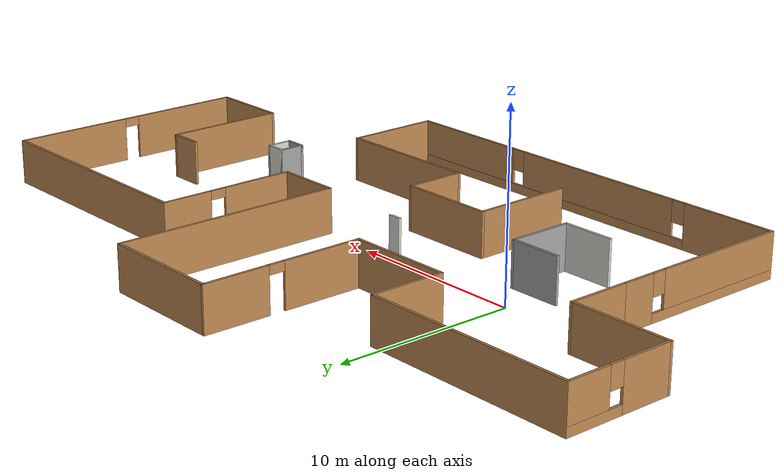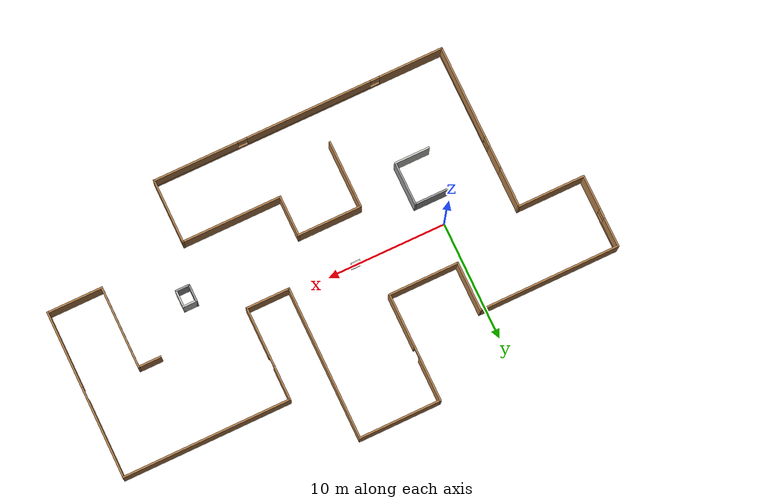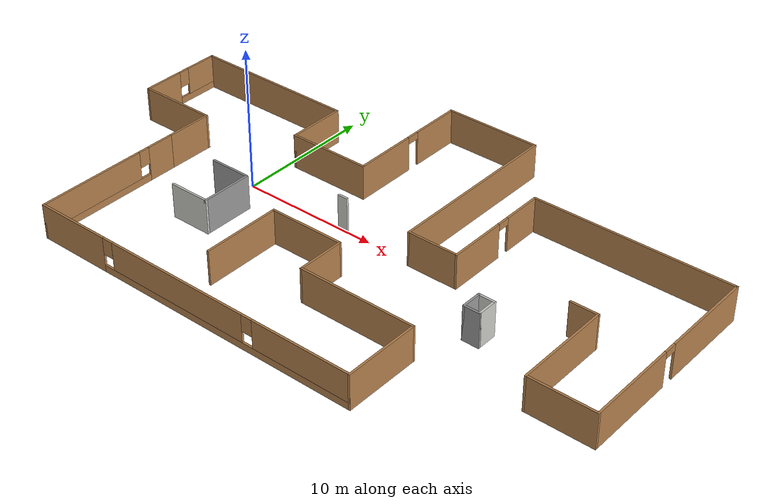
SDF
<?xml version='1.0'?>
<sdf version='1.7'>
  <model name='my_building'>
    <pose>9.89348 0.109525 0 0 -0 0</pose>
    <link name='Wall_0'>
      <pose>-15.525 -7.225 0 0 -0 -1.5708</pose>
      <visual name='Wall_0_Visual_0'>
        <pose>-4.36645 0 1.25 0 -0 0</pose>
        <geometry>
          <box>
            <size>2.0171 0.15 2.5</size>
          </box>
        </geometry>
        <material>
          <script>
            <uri>file://media/materials/scripts/gazebo.material</uri>
            <name>Gazebo/Wood</name>
          </script>
          <ambient>1 1 1 1</ambient>
        </material>
        <meta>
          <layer>0</layer>
        </meta>
      </visual>
      <collision name='Wall_0_Collision_0'>
        <geometry>
          <box>
            <size>2.0171 0.15 2.5</size>
          </box>
        </geometry>
        <pose>-4.36645 0 1.25 0 -0 0</pose>
      </collision>
      <visual name='Wall_0_Visual_1'>
        <pose>1.00855 0 0.25 0 -0 0</pose>
        <geometry>
          <box>
            <size>8.7329 0.15 0.5</size>
          </box>
        </geometry>
        <material>
          <script>
            <uri>file://media/materials/scripts/gazebo.material</uri>
            <name>Gazebo/Wood</name>
          </script>
          <ambient>1 1 1 1</ambient>
        </material>
        <meta>
          <layer>0</layer>
        </meta>
      </visual>
      <collision name='Wall_0_Collision_1'>
        <geometry>
          <box>
            <size>8.7329 0.15 0.5</size>
          </box>
        </geometry>
        <pose>1.00855 0 0.25 0 -0 0</pose>
      </collision>
      <visual name='Wall_0_Visual_2'>
        <pose>1.40855 0 1.5 0 -0 0</pose>
        <geometry>
          <box>
            <size>7.9329 0.15 2</size>
          </box>
        </geometry>
        <material>
          <script>
            <uri>file://media/materials/scripts/gazebo.material</uri>
            <name>Gazebo/Wood</name>
          </script>
          <ambient>1 1 1 1</ambient>
        </material>
        <meta>
          <layer>0</layer>
        </meta>
      </visual>
      <collision name='Wall_0_Collision_2'>
        <geometry>
          <box>
            <size>7.9329 0.15 2</size>
          </box>
        </geometry>
        <pose>1.40855 0 1.5 0 -0 0</pose>
      </collision>
      <visual name='Wall_0_Visual_3'>
        <pose>-2.9579 0 1.9 0 -0 0</pose>
        <geometry>
          <box>
            <size>0.8 0.15 1.2</size>
          </box>
        </geometry>
        <material>
          <script>
            <uri>file://media/materials/scripts/gazebo.material</uri>
            <name>Gazebo/Wood</name>
          </script>
          <ambient>1 1 1 1</ambient>
        </material>
        <meta>
          <layer>0</layer>
        </meta>
      </visual>
      <collision name='Wall_0_Collision_3'>
        <geometry>
          <box>
            <size>0.8 0.15 1.2</size>
          </box>
        </geometry>
        <pose>-2.9579 0 1.9 0 -0 0</pose>
      </collision>
    </link>
    <link name='Wall_1'>
      <pose>-3.1 -12.525 0 0 -0 0</pose>
      <visual name='Wall_1_Visual_0'>
        <pose>-9.75801 0 1.25 0 -0 0</pose>
        <geometry>
          <box>
            <size>5.48397 0.15 2.5</size>
          </box>
        </geometry>
        <material>
          <script>
            <uri>file://media/materials/scripts/gazebo.material</uri>
            <name>Gazebo/Wood</name>
          </script>
          <ambient>1 1 1 1</ambient>
        </material>
        <meta>
          <layer>0</layer>
        </meta>
      </visual>
      <collision name='Wall_1_Collision_0'>
        <geometry>
          <box>
            <size>5.48397 0.15 2.5</size>
          </box>
        </geometry>
        <pose>-9.75801 0 1.25 0 -0 0</pose>
      </collision>
      <visual name='Wall_1_Visual_1'>
        <pose>2.74199 0 0.25 0 -0 0</pose>
        <geometry>
          <box>
            <size>19.516 0.15 0.5</size>
          </box>
        </geometry>
        <material>
          <script>
            <uri>file://media/materials/scripts/gazebo.material</uri>
            <name>Gazebo/Wood</name>
          </script>
          <ambient>1 1 1 1</ambient>
        </material>
        <meta>
          <layer>0</layer>
        </meta>
      </visual>
      <collision name='Wall_1_Collision_1'>
        <geometry>
          <box>
            <size>19.516 0.15 0.5</size>
          </box>
        </geometry>
        <pose>2.74199 0 0.25 0 -0 0</pose>
      </collision>
      <visual name='Wall_1_Visual_2'>
        <pose>-0.884706 0 1.5 0 -0 0</pose>
        <geometry>
          <box>
            <size>10.6626 0.15 2</size>
          </box>
        </geometry>
        <material>
          <script>
            <uri>file://media/materials/scripts/gazebo.material</uri>
            <name>Gazebo/Wood</name>
          </script>
          <ambient>1 1 1 1</ambient>
        </material>
        <meta>
          <layer>0</layer>
        </meta>
      </visual>
      <collision name='Wall_1_Collision_2'>
        <geometry>
          <box>
            <size>10.6626 0.15 2</size>
          </box>
        </geometry>
        <pose>-0.884706 0 1.5 0 -0 0</pose>
      </collision>
      <visual name='Wall_1_Visual_3'>
        <pose>8.87331 0 1.5 0 -0 0</pose>
        <geometry>
          <box>
            <size>7.25338 0.15 2</size>
          </box>
        </geometry>
        <material>
          <script>
            <uri>file://media/materials/scripts/gazebo.material</uri>
            <name>Gazebo/Wood</name>
          </script>
          <ambient>1 1 1 1</ambient>
        </material>
        <meta>
          <layer>0</layer>
        </meta>
      </visual>
      <collision name='Wall_1_Collision_3'>
        <geometry>
          <box>
            <size>7.25338 0.15 2</size>
          </box>
        </geometry>
        <pose>8.87331 0 1.5 0 -0 0</pose>
      </collision>
      <visual name='Wall_1_Visual_4'>
        <pose>-6.61603 0 1.9 0 -0 0</pose>
        <geometry>
          <box>
            <size>0.8 0.15 1.2</size>
          </box>
        </geometry>
        <material>
          <script>
            <uri>file://media/materials/scripts/gazebo.material</uri>
            <name>Gazebo/Wood</name>
          </script>
          <ambient>1 1 1 1</ambient>
        </material>
        <meta>
          <layer>0</layer>
        </meta>
      </visual>
      <collision name='Wall_1_Collision_4'>
        <geometry>
          <box>
            <size>0.8 0.15 1.2</size>
          </box>
        </geometry>
        <pose>-6.61603 0 1.9 0 -0 0</pose>
      </collision>
      <visual name='Wall_1_Visual_5'>
        <pose>4.84662 0 1.9 0 -0 0</pose>
        <geometry>
          <box>
            <size>0.8 0.15 1.2</size>
          </box>
        </geometry>
        <material>
          <script>
            <uri>file://media/materials/scripts/gazebo.material</uri>
            <name>Gazebo/Wood</name>
          </script>
          <ambient>1 1 1 1</ambient>
        </material>
        <meta>
          <layer>0</layer>
        </meta>
      </visual>
      <collision name='Wall_1_Collision_5'>
        <geometry>
          <box>
            <size>0.8 0.15 1.2</size>
          </box>
        </geometry>
        <pose>4.84662 0 1.9 0 -0 0</pose>
      </collision>
    </link>
    <link name='Wall_10'>
      <pose>-21.125 4.475 0 0 -0 1.5708</pose>
      <visual name='Wall_10_Visual_0'>
        <pose>-1.64048 0 1.25 0 -0 0</pose>
        <geometry>
          <box>
            <size>2.96905 0.15 2.5</size>
          </box>
        </geometry>
        <material>
          <script>
            <uri>file://media/materials/scripts/gazebo.material</uri>
            <name>Gazebo/Wood</name>
          </script>
          <ambient>1 1 1 1</ambient>
        </material>
        <meta>
          <layer>0</layer>
        </meta>
      </visual>
      <collision name='Wall_10_Collision_0'>
        <geometry>
          <box>
            <size>2.96905 0.15 2.5</size>
          </box>
        </geometry>
        <pose>-1.64048 0 1.25 0 -0 0</pose>
      </collision>
      <visual name='Wall_10_Visual_1'>
        <pose>1.48452 0 0.25 0 -0 0</pose>
        <geometry>
          <box>
            <size>3.28095 0.15 0.5</size>
          </box>
        </geometry>
        <material>
          <script>
            <uri>file://media/materials/scripts/gazebo.material</uri>
            <name>Gazebo/Wood</name>
          </script>
          <ambient>1 1 1 1</ambient>
        </material>
        <meta>
          <layer>0</layer>
        </meta>
      </visual>
      <collision name='Wall_10_Collision_1'>
        <geometry>
          <box>
            <size>3.28095 0.15 0.5</size>
          </box>
        </geometry>
        <pose>1.48452 0 0.25 0 -0 0</pose>
      </collision>
      <visual name='Wall_10_Visual_2'>
        <pose>1.88452 0 1.5 0 -0 0</pose>
        <geometry>
          <box>
            <size>2.48095 0.15 2</size>
          </box>
        </geometry>
        <material>
          <script>
            <uri>file://media/materials/scripts/gazebo.material</uri>
            <name>Gazebo/Wood</name>
          </script>
          <ambient>1 1 1 1</ambient>
        </material>
        <meta>
          <layer>0</layer>
        </meta>
      </visual>
      <collision name='Wall_10_Collision_2'>
        <geometry>
          <box>
            <size>2.48095 0.15 2</size>
          </box>
        </geometry>
        <pose>1.88452 0 1.5 0 -0 0</pose>
      </collision>
      <visual name='Wall_10_Visual_3'>
        <pose>0.244047 0 1.9 0 -0 0</pose>
        <geometry>
          <box>
            <size>0.8 0.15 1.2</size>
          </box>
        </geometry>
        <material>
          <script>
            <uri>file://media/materials/scripts/gazebo.material</uri>
            <name>Gazebo/Wood</name>
          </script>
          <ambient>1 1 1 1</ambient>
        </material>
        <meta>
          <layer>0</layer>
        </meta>
      </visual>
      <collision name='Wall_10_Collision_3'>
        <geometry>
          <box>
            <size>0.8 0.15 1.2</size>
          </box>
        </geometry>
        <pose>0.244047 0 1.9 0 -0 0</pose>
      </collision>
    </link>
    <link name='Wall_11'>
      <collision name='Wall_11_Collision'>
        <geometry>
          <box>
            <size>12 0.15 2.5</size>
          </box>
        </geometry>
        <pose>0 0 1.25 0 -0 0</pose>
      </collision>
      <visual name='Wall_11_Visual'>
        <pose>0 0 1.25 0 -0 0</pose>
        <geometry>
          <box>
            <size>12 0.15 2.5</size>
          </box>
        </geometry>
        <material>
          <script>
            <uri>file://media/materials/scripts/gazebo.material</uri>
            <name>Gazebo/Wood</name>
          </script>
          <ambient>1 1 1 1</ambient>
        </material>
        <meta>
          <layer>0</layer>
        </meta>
      </visual>
      <pose>-15.2 7.525 0 0 -0 0</pose>
    </link>
    <link name='Wall_12'>
      <collision name='Wall_12_Collision'>
        <geometry>
          <box>
            <size>4.25 0.15 2.5</size>
          </box>
        </geometry>
        <pose>0 0 1.25 0 -0 0</pose>
      </collision>
      <visual name='Wall_12_Visual'>
        <pose>0 0 1.25 0 -0 0</pose>
        <geometry>
          <box>
            <size>4.25 0.15 2.5</size>
          </box>
        </geometry>
        <material>
          <script>
            <uri>file://media/materials/scripts/gazebo.material</uri>
            <name>Gazebo/Wood</name>
          </script>
          <ambient>1 1 1 1</ambient>
        </material>
        <meta>
          <layer>0</layer>
        </meta>
      </visual>
      <pose>-9.275 5.475 0 0 -0 -1.5708</pose>
    </link>
    <link name='Wall_13'>
      <collision name='Wall_13_Collision'>
        <geometry>
          <box>
            <size>6 0.15 2.5</size>
          </box>
        </geometry>
        <pose>0 0 1.25 0 -0 0</pose>
      </collision>
      <visual name='Wall_13_Visual'>
        <pose>0 0 1.25 0 -0 0</pose>
        <geometry>
          <box>
            <size>6 0.15 2.5</size>
          </box>
        </geometry>
        <material>
          <script>
            <uri>file://media/materials/scripts/gazebo.material</uri>
            <name>Gazebo/Wood</name>
          </script>
          <ambient>1 1 1 1</ambient>
        </material>
        <meta>
          <layer>0</layer>
        </meta>
      </visual>
      <pose>-6.35 3.425 0 0 -0 0</pose>
    </link>
    <link name='Wall_14'>
      <pose>-3.425 7.975 0 0 -0 1.5708</pose>
      <visual name='Wall_14_Visual_0'>
        <pose>-2.32579 0 1.25 0 -0 0</pose>
        <geometry>
          <box>
            <size>4.59841 0.15 2.5</size>
          </box>
        </geometry>
        <material>
          <script>
            <uri>file://media/materials/scripts/gazebo.material</uri>
            <name>Gazebo/Wood</name>
          </script>
          <ambient>1 1 1 1</ambient>
        </material>
        <meta>
          <layer>0</layer>
        </meta>
      </visual>
      <collision name='Wall_14_Collision_0'>
        <geometry>
          <box>
            <size>4.59841 0.15 2.5</size>
          </box>
        </geometry>
        <pose>-2.32579 0 1.25 0 -0 0</pose>
      </collision>
      <visual name='Wall_14_Visual_1'>
        <pose>2.74921 0 1.25 0 -0 0</pose>
        <geometry>
          <box>
            <size>3.75159 0.15 2.5</size>
          </box>
        </geometry>
        <material>
          <script>
            <uri>file://media/materials/scripts/gazebo.material</uri>
            <name>Gazebo/Wood</name>
          </script>
          <ambient>1 1 1 1</ambient>
        </material>
        <meta>
          <layer>0</layer>
        </meta>
      </visual>
      <collision name='Wall_14_Collision_1'>
        <geometry>
          <box>
            <size>3.75159 0.15 2.5</size>
          </box>
        </geometry>
        <pose>2.74921 0 1.25 0 -0 0</pose>
      </collision>
      <visual name='Wall_14_Visual_2'>
        <pose>0.423414 0 2.25 0 -0 0</pose>
        <geometry>
          <box>
            <size>0.9 0.15 0.5</size>
          </box>
        </geometry>
        <material>
          <script>
            <uri>file://media/materials/scripts/gazebo.material</uri>
            <name>Gazebo/Wood</name>
          </script>
          <ambient>1 1 1 1</ambient>
        </material>
        <meta>
          <layer>0</layer>
        </meta>
      </visual>
      <collision name='Wall_14_Collision_2'>
        <geometry>
          <box>
            <size>0.9 0.15 0.5</size>
          </box>
        </geometry>
        <pose>0.423414 0 2.25 0 -0 0</pose>
      </collision>
    </link>
    <link name='Wall_15'>
      <collision name='Wall_15_Collision'>
        <geometry>
          <box>
            <size>7 0.15 2.5</size>
          </box>
        </geometry>
        <pose>0 0 1.25 0 -0 0</pose>
      </collision>
      <visual name='Wall_15_Visual'>
        <pose>0 0 1.25 0 -0 0</pose>
        <geometry>
          <box>
            <size>7 0.15 2.5</size>
          </box>
        </geometry>
        <material>
          <script>
            <uri>file://media/materials/scripts/gazebo.material</uri>
            <name>Gazebo/Wood</name>
          </script>
          <ambient>1 1 1 1</ambient>
        </material>
        <meta>
          <layer>0</layer>
        </meta>
      </visual>
      <pose>0 12.525 0 0 -0 0</pose>
    </link>
    <link name='Wall_16'>
      <collision name='Wall_16_Collision'>
        <geometry>
          <box>
            <size>13 0.15 2.5</size>
          </box>
        </geometry>
        <pose>0 0 1.25 0 -0 0</pose>
      </collision>
      <visual name='Wall_16_Visual'>
        <pose>0 0 1.25 0 -0 0</pose>
        <geometry>
          <box>
            <size>13 0.15 2.5</size>
          </box>
        </geometry>
        <material>
          <script>
            <uri>file://media/materials/scripts/gazebo.material</uri>
            <name>Gazebo/Wood</name>
          </script>
          <ambient>1 1 1 1</ambient>
        </material>
        <meta>
          <layer>0</layer>
        </meta>
      </visual>
      <pose>3.425 6.1 0 0 -0 -1.5708</pose>
    </link>
    <link name='Wall_17'>
      <collision name='Wall_17_Collision'>
        <geometry>
          <box>
            <size>3.75 0.15 2.5</size>
          </box>
        </geometry>
        <pose>0 0 1.25 0 -0 0</pose>
      </collision>
      <visual name='Wall_17_Visual'>
        <pose>0 0 1.25 0 -0 0</pose>
        <geometry>
          <box>
            <size>3.75 0.15 2.5</size>
          </box>
        </geometry>
        <material>
          <script>
            <uri>file://media/materials/scripts/gazebo.material</uri>
            <name>Gazebo/Wood</name>
          </script>
          <ambient>1 1 1 1</ambient>
        </material>
        <meta>
          <layer>0</layer>
        </meta>
      </visual>
      <pose>5.225 -0.325 0 0 -0 0</pose>
    </link>
    <link name='Wall_18'>
      <pose>7.025 3.6 0 0 -0 1.5708</pose>
      <visual name='Wall_18_Visual_0'>
        <pose>-1.91313 0 1.25 0 -0 0</pose>
        <geometry>
          <box>
            <size>4.17375 0.15 2.5</size>
          </box>
        </geometry>
        <material>
          <script>
            <uri>file://media/materials/scripts/gazebo.material</uri>
            <name>Gazebo/Wood</name>
          </script>
          <ambient>1 1 1 1</ambient>
        </material>
        <meta>
          <layer>0</layer>
        </meta>
      </visual>
      <collision name='Wall_18_Collision_0'>
        <geometry>
          <box>
            <size>4.17375 0.15 2.5</size>
          </box>
        </geometry>
        <pose>-1.91313 0 1.25 0 -0 0</pose>
      </collision>
      <visual name='Wall_18_Visual_1'>
        <pose>2.53687 0 1.25 0 -0 0</pose>
        <geometry>
          <box>
            <size>2.92625 0.15 2.5</size>
          </box>
        </geometry>
        <material>
          <script>
            <uri>file://media/materials/scripts/gazebo.material</uri>
            <name>Gazebo/Wood</name>
          </script>
          <ambient>1 1 1 1</ambient>
        </material>
        <meta>
          <layer>0</layer>
        </meta>
      </visual>
      <collision name='Wall_18_Collision_1'>
        <geometry>
          <box>
            <size>2.92625 0.15 2.5</size>
          </box>
        </geometry>
        <pose>2.53687 0 1.25 0 -0 0</pose>
      </collision>
      <visual name='Wall_18_Visual_2'>
        <pose>0.623748 0 2.25 0 -0 0</pose>
        <geometry>
          <box>
            <size>0.9 0.15 0.5</size>
          </box>
        </geometry>
        <material>
          <script>
            <uri>file://media/materials/scripts/gazebo.material</uri>
            <name>Gazebo/Wood</name>
          </script>
          <ambient>1 1 1 1</ambient>
        </material>
        <meta>
          <layer>0</layer>
        </meta>
      </visual>
      <collision name='Wall_18_Collision_2'>
        <geometry>
          <box>
            <size>0.9 0.15 0.5</size>
          </box>
        </geometry>
        <pose>0.623748 0 2.25 0 -0 0</pose>
      </collision>
    </link>
    <link name='Wall_19'>
      <collision name='Wall_19_Collision'>
        <geometry>
          <box>
            <size>14.25 0.15 2.5</size>
          </box>
        </geometry>
        <pose>0 0 1.25 0 -0 0</pose>
      </collision>
      <visual name='Wall_19_Visual'>
        <pose>0 0 1.25 0 -0 0</pose>
        <geometry>
          <box>
            <size>14.25 0.15 2.5</size>
          </box>
        </geometry>
        <material>
          <script>
            <uri>file://media/materials/scripts/gazebo.material</uri>
            <name>Gazebo/Wood</name>
          </script>
          <ambient>1 1 1 1</ambient>
        </material>
        <meta>
          <layer>0</layer>
        </meta>
      </visual>
      <pose>14.075 7.525 0 0 -0 0</pose>
    </link>
    <link name='Wall_2'>
      <collision name='Wall_2_Collision'>
        <geometry>
          <box>
            <size>5.5 0.15 2.5</size>
          </box>
        </geometry>
        <pose>0 0 1.25 0 -0 0</pose>
      </collision>
      <visual name='Wall_2_Visual'>
        <pose>0 0 1.25 0 -0 0</pose>
        <geometry>
          <box>
            <size>5.5 0.15 2.5</size>
          </box>
        </geometry>
        <material>
          <script>
            <uri>file://media/materials/scripts/gazebo.material</uri>
            <name>Gazebo/Wood</name>
          </script>
          <ambient>1 1 1 1</ambient>
        </material>
        <meta>
          <layer>0</layer>
        </meta>
      </visual>
      <pose>9.325 -9.85 0 0 -0 1.5708</pose>
    </link>
    <link name='Wall_20'>
      <pose>21.125 0.475 0 0 -0 -1.5708</pose>
      <visual name='Wall_20_Visual_0'>
        <pose>-3.71605 0 1.25 0 -0 0</pose>
        <geometry>
          <box>
            <size>6.81789 0.15 2.5</size>
          </box>
        </geometry>
        <material>
          <script>
            <uri>file://media/materials/scripts/gazebo.material</uri>
            <name>Gazebo/Wood</name>
          </script>
          <ambient>1 1 1 1</ambient>
        </material>
        <meta>
          <layer>0</layer>
        </meta>
      </visual>
      <collision name='Wall_20_Collision_0'>
        <geometry>
          <box>
            <size>6.81789 0.15 2.5</size>
          </box>
        </geometry>
        <pose>-3.71605 0 1.25 0 -0 0</pose>
      </collision>
      <visual name='Wall_20_Visual_1'>
        <pose>3.85894 0 1.25 0 -0 0</pose>
        <geometry>
          <box>
            <size>6.53211 0.15 2.5</size>
          </box>
        </geometry>
        <material>
          <script>
            <uri>file://media/materials/scripts/gazebo.material</uri>
            <name>Gazebo/Wood</name>
          </script>
          <ambient>1 1 1 1</ambient>
        </material>
        <meta>
          <layer>0</layer>
        </meta>
      </visual>
      <collision name='Wall_20_Collision_1'>
        <geometry>
          <box>
            <size>6.53211 0.15 2.5</size>
          </box>
        </geometry>
        <pose>3.85894 0 1.25 0 -0 0</pose>
      </collision>
      <visual name='Wall_20_Visual_2'>
        <pose>0.14289 0 2.25 0 -0 0</pose>
        <geometry>
          <box>
            <size>0.9 0.15 0.5</size>
          </box>
        </geometry>
        <material>
          <script>
            <uri>file://media/materials/scripts/gazebo.material</uri>
            <name>Gazebo/Wood</name>
          </script>
          <ambient>1 1 1 1</ambient>
        </material>
        <meta>
          <layer>0</layer>
        </meta>
      </visual>
      <collision name='Wall_20_Collision_2'>
        <geometry>
          <box>
            <size>0.9 0.15 0.5</size>
          </box>
        </geometry>
        <pose>0.14289 0 2.25 0 -0 0</pose>
      </collision>
    </link>
    <link name='Wall_21'>
      <collision name='Wall_21_Collision'>
        <geometry>
          <box>
            <size>4.75 0.15 2.5</size>
          </box>
        </geometry>
        <pose>0 0 1.25 0 -0 0</pose>
      </collision>
      <visual name='Wall_21_Visual'>
        <pose>0 0 1.25 0 -0 0</pose>
        <geometry>
          <box>
            <size>4.75 0.15 2.5</size>
          </box>
        </geometry>
        <material>
          <script>
            <uri>file://media/materials/scripts/gazebo.material</uri>
            <name>Gazebo/Wood</name>
          </script>
          <ambient>1 1 1 1</ambient>
        </material>
        <meta>
          <layer>0</layer>
        </meta>
      </visual>
      <pose>18.825 -6.575 0 0 -0 3.14159</pose>
    </link>
    <link name='Wall_22'>
      <collision name='Wall_22_Collision'>
        <geometry>
          <box>
            <size>7 0.15 2.5</size>
          </box>
        </geometry>
        <pose>0 0 1.25 0 -0 0</pose>
      </collision>
      <visual name='Wall_22_Visual'>
        <pose>0 0 1.25 0 -0 0</pose>
        <geometry>
          <box>
            <size>7 0.15 2.5</size>
          </box>
        </geometry>
        <material>
          <script>
            <uri>file://media/materials/scripts/gazebo.material</uri>
            <name>Gazebo/Wood</name>
          </script>
          <ambient>1 1 1 1</ambient>
        </material>
        <meta>
          <layer>0</layer>
        </meta>
      </visual>
      <pose>16.525 -3.15 0 0 -0 1.5708</pose>
    </link>
    <link name='Wall_23'>
      <collision name='Wall_23_Collision'>
        <geometry>
          <box>
            <size>2 0.15 2.5</size>
          </box>
        </geometry>
        <pose>0 0 1.25 0 -0 0</pose>
      </collision>
      <visual name='Wall_23_Visual'>
        <pose>0 0 1.25 0 -0 0</pose>
        <geometry>
          <box>
            <size>2 0.15 2.5</size>
          </box>
        </geometry>
        <material>
          <script>
            <uri>file://media/materials/scripts/gazebo.material</uri>
            <name>Gazebo/Wood</name>
          </script>
          <ambient>1 1 1 1</ambient>
        </material>
        <meta>
          <layer>0</layer>
        </meta>
      </visual>
      <pose>15.6 0.275 0 0 -0 3.14159</pose>
    </link>
    <link name='Wall_25'>
      <collision name='Wall_25_Collision'>
        <geometry>
          <box>
            <size>3 0.15 2.5</size>
          </box>
        </geometry>
        <pose>0 0 1.25 0 -0 0</pose>
      </collision>
      <visual name='Wall_25_Visual'>
        <pose>0 0 1.25 0 -0 0</pose>
        <geometry>
          <box>
            <size>3 0.15 2.5</size>
          </box>
        </geometry>
        <material>
          <script>
            <uri>file://media/materials/scripts/gazebo.material</uri>
            <name>Gazebo/Grey</name>
          </script>
          <ambient>1 1 1 1</ambient>
        </material>
        <meta>
          <layer>0</layer>
        </meta>
      </visual>
      <pose>-9.71995 -2.17073 0 0 -0 0</pose>
    </link>
    <link name='Wall_26'>
      <collision name='Wall_26_Collision'>
        <geometry>
          <box>
            <size>3.75 0.15 2.5</size>
          </box>
        </geometry>
        <pose>0 0 1.25 0 -0 0</pose>
      </collision>
      <visual name='Wall_26_Visual'>
        <pose>0 0 1.25 0 -0 0</pose>
        <geometry>
          <box>
            <size>3.75 0.15 2.5</size>
          </box>
        </geometry>
        <material>
          <script>
            <uri>file://media/materials/scripts/gazebo.material</uri>
            <name>Gazebo/Grey</name>
          </script>
          <ambient>1 1 1 1</ambient>
        </material>
        <meta>
          <layer>0</layer>
        </meta>
      </visual>
      <pose>-8.29495 -3.97073 0 0 -0 -1.5708</pose>
    </link>
    <link name='Wall_27'>
      <collision name='Wall_27_Collision'>
        <geometry>
          <box>
            <size>3 0.15 2.5</size>
          </box>
        </geometry>
        <pose>0 0 1.25 0 -0 0</pose>
      </collision>
      <visual name='Wall_27_Visual'>
        <pose>0 0 1.25 0 -0 0</pose>
        <geometry>
          <box>
            <size>3 0.15 2.5</size>
          </box>
        </geometry>
        <material>
          <script>
            <uri>file://media/materials/scripts/gazebo.material</uri>
            <name>Gazebo/CeilingTiled</name>
          </script>
          <ambient>1 1 1 1</ambient>
        </material>
        <meta>
          <layer>0</layer>
        </meta>
      </visual>
      <pose>-9.71995 -5.77073 0 0 -0 3.14159</pose>
    </link>
    <link name='Wall_29'>
      <collision name='Wall_29_Collision'>
        <geometry>
          <box>
            <size>1.25 0.15 2.5</size>
          </box>
        </geometry>
        <pose>0 0 1.25 0 -0 0</pose>
      </collision>
      <visual name='Wall_29_Visual'>
        <pose>0 0 1.25 0 -0 0</pose>
        <geometry>
          <box>
            <size>1.25 0.15 2.5</size>
          </box>
        </geometry>
        <material>
          <script>
            <uri>file://media/materials/scripts/gazebo.material</uri>
            <name>Gazebo/CeilingTiled</name>
          </script>
          <ambient>1 1 1 1</ambient>
        </material>
        <meta>
          <layer>0</layer>
        </meta>
      </visual>
      <pose>10.8657 -2.52708 0 0 -0 0</pose>
    </link>
    <link name='Wall_3'>
      <collision name='Wall_3_Collision'>
        <geometry>
          <box>
            <size>8.5 0.15 2.5</size>
          </box>
        </geometry>
        <pose>0 0 1.25 0 -0 0</pose>
      </collision>
      <visual name='Wall_3_Visual'>
        <pose>0 0 1.25 0 -0 0</pose>
        <geometry>
          <box>
            <size>8.5 0.15 2.5</size>
          </box>
        </geometry>
        <material>
          <script>
            <uri>file://media/materials/scripts/gazebo.material</uri>
            <name>Gazebo/Wood</name>
          </script>
          <ambient>1 1 1 1</ambient>
        </material>
        <meta>
          <layer>0</layer>
        </meta>
      </visual>
      <pose>5.15 -7.175 0 0 -0 3.14159</pose>
    </link>
    <link name='Wall_30'>
      <collision name='Wall_30_Collision'>
        <geometry>
          <box>
            <size>1.5 0.15 2.5</size>
          </box>
        </geometry>
        <pose>0 0 1.25 0 -0 0</pose>
      </collision>
      <visual name='Wall_30_Visual'>
        <pose>0 0 1.25 0 -0 0</pose>
        <geometry>
          <box>
            <size>1.5 0.15 2.5</size>
          </box>
        </geometry>
        <material>
          <script>
            <uri>file://media/materials/scripts/gazebo.material</uri>
            <name>Gazebo/CeilingTiled</name>
          </script>
          <ambient>1 1 1 1</ambient>
        </material>
        <meta>
          <layer>0</layer>
        </meta>
      </visual>
      <pose>11.4157 -3.20208 0 0 -0 -1.5708</pose>
    </link>
    <link name='Wall_31'>
      <collision name='Wall_31_Collision'>
        <geometry>
          <box>
            <size>1.25 0.15 2.5</size>
          </box>
        </geometry>
        <pose>0 0 1.25 0 -0 0</pose>
      </collision>
      <visual name='Wall_31_Visual'>
        <pose>0 0 1.25 0 -0 0</pose>
        <geometry>
          <box>
            <size>1.25 0.15 2.5</size>
          </box>
        </geometry>
        <material>
          <script>
            <uri>file://media/materials/scripts/gazebo.material</uri>
            <name>Gazebo/Grey</name>
          </script>
          <ambient>1 1 1 1</ambient>
        </material>
        <meta>
          <layer>0</layer>
        </meta>
      </visual>
      <pose>10.8657 -3.87708 0 0 -0 3.14159</pose>
    </link>
    <link name='Wall_32'>
      <collision name='Wall_32_Collision'>
        <geometry>
          <box>
            <size>1.5 0.15 2.5</size>
          </box>
        </geometry>
        <pose>0 0 1.25 0 -0 0</pose>
      </collision>
      <visual name='Wall_32_Visual'>
        <pose>0 0 1.25 0 -0 0</pose>
        <geometry>
          <box>
            <size>1.5 0.15 2.5</size>
          </box>
        </geometry>
        <material>
          <script>
            <uri>file://media/materials/scripts/gazebo.material</uri>
            <name>Gazebo/Grey</name>
          </script>
          <ambient>1 1 1 1</ambient>
        </material>
        <meta>
          <layer>0</layer>
        </meta>
      </visual>
      <pose>10.3157 -3.20208 0 0 -0 1.5708</pose>
    </link>
    <link name='Wall_34'>
      <collision name='Wall_34_Collision'>
        <geometry>
          <box>
            <size>0.75 0.15 2.5</size>
          </box>
        </geometry>
        <pose>0 0 1.25 0 -0 0</pose>
      </collision>
      <visual name='Wall_34_Visual'>
        <pose>0 0 1.25 0 -0 0</pose>
        <geometry>
          <box>
            <size>0.75 0.15 2.5</size>
          </box>
        </geometry>
        <material>
          <script>
            <uri>file://media/materials/scripts/gazebo.material</uri>
            <name>Gazebo/CeilingTiled</name>
          </script>
          <ambient>1 1 1 1</ambient>
        </material>
        <meta>
          <layer>0</layer>
        </meta>
      </visual>
      <pose>-2.1206 -0.004439 0 0 -0 0</pose>
    </link>
    <link name='Wall_4'>
      <collision name='Wall_4_Collision'>
        <geometry>
          <box>
            <size>3.5 0.15 2.5</size>
          </box>
        </geometry>
        <pose>0 0 1.25 0 -0 0</pose>
      </collision>
      <visual name='Wall_4_Visual'>
        <pose>0 0 1.25 0 -0 0</pose>
        <geometry>
          <box>
            <size>3.5 0.15 2.5</size>
          </box>
        </geometry>
        <material>
          <script>
            <uri>file://media/materials/scripts/gazebo.material</uri>
            <name>Gazebo/Wood</name>
          </script>
          <ambient>1 1 1 1</ambient>
        </material>
        <meta>
          <layer>0</layer>
        </meta>
      </visual>
      <pose>0.975 -5.5 0 0 -0 1.5708</pose>
    </link>
    <link name='Wall_5'>
      <collision name='Wall_5_Collision'>
        <geometry>
          <box>
            <size>5.5 0.15 2.5</size>
          </box>
        </geometry>
        <pose>0 0 1.25 0 -0 0</pose>
      </collision>
      <visual name='Wall_5_Visual'>
        <pose>0 0 1.25 0 -0 0</pose>
        <geometry>
          <box>
            <size>5.5 0.15 2.5</size>
          </box>
        </geometry>
        <material>
          <script>
            <uri>file://media/materials/scripts/gazebo.material</uri>
            <name>Gazebo/Wood</name>
          </script>
          <ambient>1 1 1 1</ambient>
        </material>
        <meta>
          <layer>0</layer>
        </meta>
      </visual>
      <pose>-1.7 -3.825 0 0 -0 3.14159</pose>
    </link>
    <link name='Wall_6'>
      <collision name='Wall_6_Collision'>
        <geometry>
          <box>
            <size>5.75 0.15 2.5</size>
          </box>
        </geometry>
        <pose>0 0 1.25 0 -0 0</pose>
      </collision>
      <visual name='Wall_6_Visual'>
        <pose>0 0 1.25 0 -0 0</pose>
        <geometry>
          <box>
            <size>5.75 0.15 2.5</size>
          </box>
        </geometry>
        <material>
          <script>
            <uri>file://media/materials/scripts/gazebo.material</uri>
            <name>Gazebo/Wood</name>
          </script>
          <ambient>1 1 1 1</ambient>
        </material>
        <meta>
          <layer>0</layer>
        </meta>
      </visual>
      <pose>-4.375 -6.625 0 0 -0 -1.5708</pose>
    </link>
    <link name='Wall_8'>
      <collision name='Wall_8_Collision'>
        <geometry>
          <box>
            <size>3.5 0.15 2.5</size>
          </box>
        </geometry>
        <pose>0 0 1.25 0 -0 0</pose>
      </collision>
      <visual name='Wall_8_Visual'>
        <pose>0 0 1.25 0 -0 0</pose>
        <geometry>
          <box>
            <size>3.5 0.15 2.5</size>
          </box>
        </geometry>
        <material>
          <script>
            <uri>file://media/materials/scripts/gazebo.material</uri>
            <name>Gazebo/Wood</name>
          </script>
          <ambient>1 1 1 1</ambient>
        </material>
        <meta>
          <layer>0</layer>
        </meta>
      </visual>
      <pose>-15.525 -0.25 0 0 -0 1.5708</pose>
    </link>
    <link name='Wall_9'>
      <collision name='Wall_9_Collision'>
        <geometry>
          <box>
            <size>5.75 0.15 2.5</size>
          </box>
        </geometry>
        <pose>0 0 1.25 0 -0 0</pose>
      </collision>
      <visual name='Wall_9_Visual'>
        <pose>0 0 1.25 0 -0 0</pose>
        <geometry>
          <box>
            <size>5.75 0.15 2.5</size>
          </box>
        </geometry>
        <material>
          <script>
            <uri>file://media/materials/scripts/gazebo.material</uri>
            <name>Gazebo/Wood</name>
          </script>
          <ambient>1 1 1 1</ambient>
        </material>
        <meta>
          <layer>0</layer>
        </meta>
      </visual>
      <pose>-18.325 1.425 0 0 -0 3.14159</pose>
    </link>
    <static>1</static>
  </model>
</sdf>
